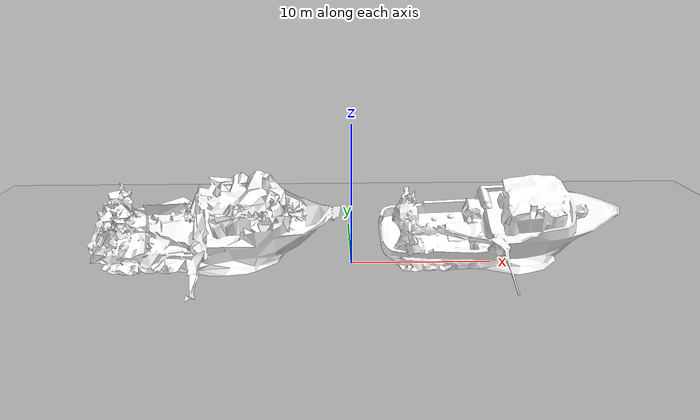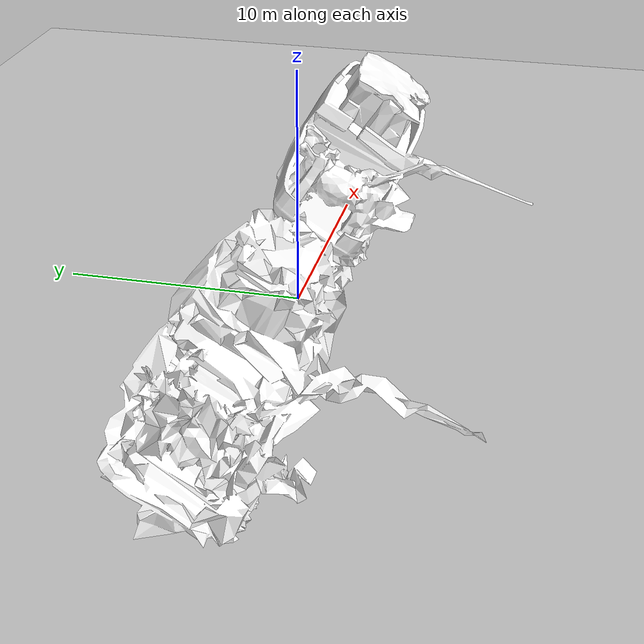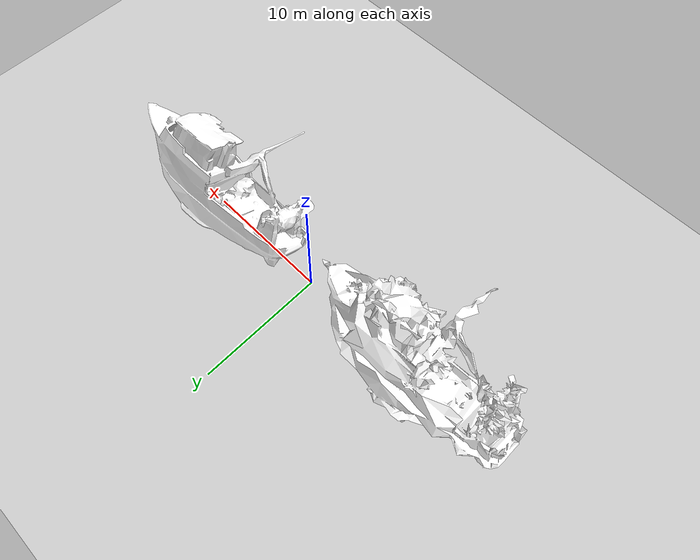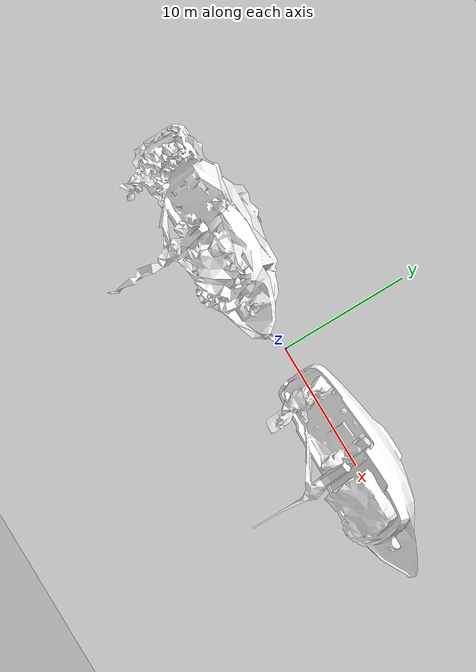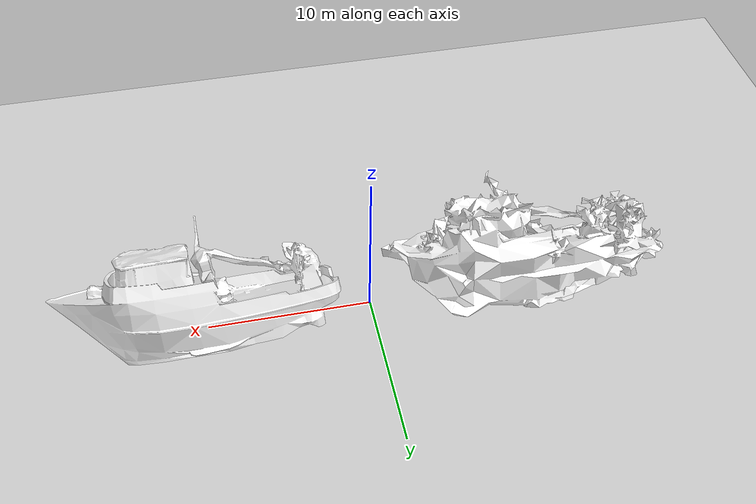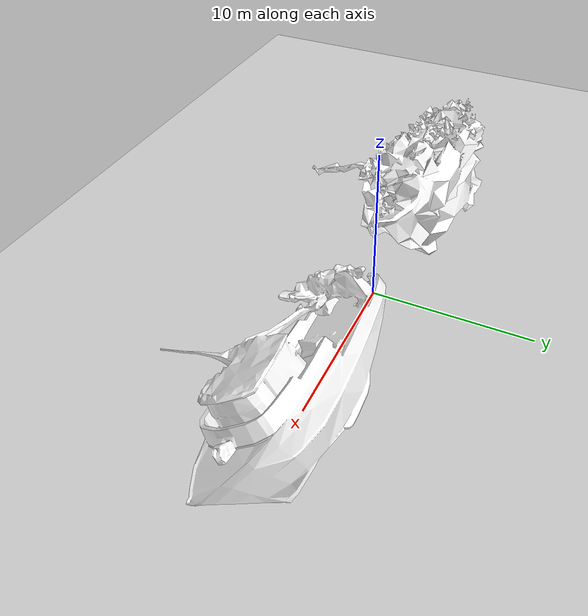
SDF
<?xml version="1.0" ?>
<sdf version="1.6">
  <world name="default">
    <include>
      <uri>model://ground_plane</uri>
    </include>
    <include>
      <uri>model://sun</uri>
    </include>

    <gui>
       <camera name="user_default">
        <pose>0 25 20 0 0.6 -1.5707</pose>
       </camera>
     </gui>

    <!-- Undistorted shipwreck -->
    <include>
      <pose>10 0 0 0 0 0</pose>
      <uri>https://fuel.ignitionrobotics.org/1.0/Cole/models/Sunken Ship</uri>
      <static>true</static>
    </include>

    <!-- Distorted shipwreck -->
    <include>
      <pose>-10 0 0 0 0 0</pose>
      <uri>model://sunken_ship_distorted</uri>
      <static>true</static>
    </include>

  </world>
</sdf>

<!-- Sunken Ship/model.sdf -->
<sdf version="1.6">
  <model name="sunkenship">
    <static>true</static>
    <link name="base_link">
      <collision name="collision">
        <pose>0 0 0 0 0 0</pose>
        <geometry>
          <mesh>
            <uri>model://SunkenShip/meshes/sunkenship.dae</uri>
            <scale>1.0 1.0 1.0</scale>
          </mesh>
        </geometry>
      </collision>
      <visual name= "SunkenShip_visual">
        <geometry>
          <mesh>
            <uri>model://SunkenShip/meshes/sunkenship.dae</uri>
            <submesh>
              <name>SunkenShip</name>
              <center>false</center>
            </submesh>
          </mesh>
        </geometry>
        <material>
          <diffuse>1.0 1.0 1.0</diffuse>
          <specular>1.0 1.0 1.0</specular>
          <pbr>
            <metal>
              <albedo_map>model://SunkenShip/materials/textures/SunkenShip_Albedo.png</albedo_map>
              <normal_map>model://SunkenShip/materials/textures/SunkenShip_Normal.png</normal_map>
              <metalness_map>model://SunkenShip/materials/textures/SunkenShip_Metalness.png</metalness_map>
              <roughness_map>model://SunkenShip/materials/textures/SunkenShip_Roughness.png</roughness_map>
            </metal>
          </pbr>
          <!-- fallback to script if no PBR support-->
          <script>
            <uri>model://SunkenShip/materials/scripts/</uri>
            <uri>model://SunkenShip/materials/textures/</uri>
            <name>UrbanTile/SunkenShip</name>
          </script>
        </material>
      </visual>
    </link>
  </model>
</sdf>

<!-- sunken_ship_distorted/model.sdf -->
<sdf version="1.6">
    <model name="sunkenship_distorted">
        <static>true</static>
        <link name="base_link">
            <collision name="collision">
                <pose>0 0 0 0 0 0</pose>
                <geometry>
                    <mesh>
                        <uri>model://sunken_ship_distorted/meshes/sunkenship_distort.dae</uri>
                        <scale>1.0 1.0 1.0</scale>
                    </mesh>
                </geometry>
            </collision>
            <visual name="SunkenShip_distorted_visual">
                <geometry>
                    <mesh>
                        <uri>model://sunken_ship_distorted/meshes/sunkenship_distort.dae</uri>
                        <submesh>
                            <name>SunkenShip</name>
                            <center>false</center>
                        </submesh>
                    </mesh>
                </geometry>
                <material>
                    <diffuse>1.0 1.0 1.0</diffuse>
                    <specular>1.0 1.0 1.0</specular>
                    <pbr>
                        <metal>
                            <albedo_map>https://fuel.gazebosim.org/1.0/cole/models/sunken ship/2/files/materials/textures/SunkenShip_Albedo.png</albedo_map>
                            <normal_map>https://fuel.gazebosim.org/1.0/cole/models/sunken ship/2/files/materials/textures/SunkenShip_Normal.png</normal_map>
                            <metalness_map>https://fuel.gazebosim.org/1.0/cole/models/sunken ship/2/files/materials/textures/SunkenShip_Metalness.png</metalness_map>
                            <roughness_map>https://fuel.gazebosim.org/1.0/cole/models/sunken ship/2/files/materials/textures/SunkenShip_Roughness.png</roughness_map>
                        </metal>
                    </pbr>
                    <!-- fallback to script if no PBR support-->
                    <script>
                        <uri>https://fuel.gazebosim.org/1.0/cole/models/sunken ship/2/files/materials/scripts/</uri>
                        <uri>https://fuel.gazebosim.org/1.0/cole/models/sunken ship/2/files/materials/textures/</uri>
                        <name>UrbanTile/SunkenShip</name>
                    </script>
                </material>
            </visual>
        </link>
    </model>
</sdf>
